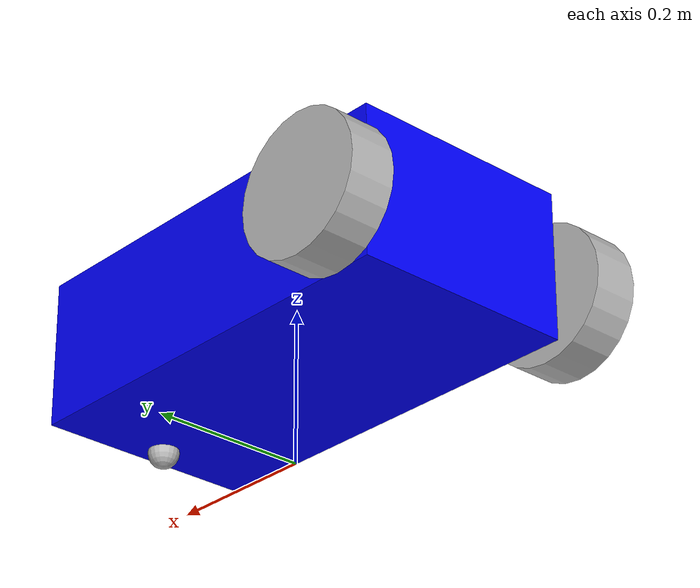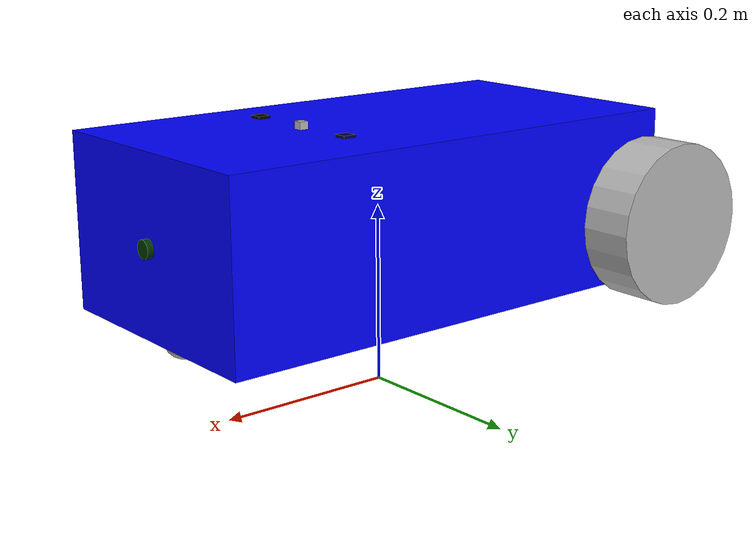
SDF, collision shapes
<?xml version="1.0" ?>
<sdf version="1.10">
    <model name='robot' canonical_link='base_link'>
      <link name='base_link'>
        <pose relative_to='__model__'>0 0 0 0 0 0</pose>
	<inertial> <!--inertial properties of the link mass, inertia matix-->
        <mass>0.00001</mass>
        <inertia>
            <ixx>0.0009</ixx>
            <ixy>0</ixy>
            <ixz>0</ixz>
            <iyy>0.0009</iyy>
            <iyz>0</iyz>
            <izz>0.0009</izz>
        </inertia>
	</inertial>

    </link>
    <link name='base_footprint'>
        <pose relative_to="base_link">0 0 0 0 0 0</pose>
    </link>
    <joint name='base_footprint_joint' type='fixed'>
        <parent>base_link</parent>
        <child>base_footprint</child>
    </joint>

    <link name='chassis'>
        <pose relative_to='base_link'>0 0 0.2 0 0 0</pose>
     <inertial> <!--inertial properties of the link mass, inertia matix-->
        <mass>2.28</mass>
        <inertia>
            <ixx>0.03667</ixx>
            <iyy>0.02383</iyy>
            <izz>0.045833</izz>
        </inertia>
    </inertial>
    <visual name='visual_chassis'>
        <geometry>
          <box>
            <size>0.568 0.296 0.193</size>
          </box>
        </geometry>
        <material>
            <ambient>0.0 0.0 1.0 1</ambient>
            <diffuse>0.0 0.0 1.0 1</diffuse>
            <specular>0.0 0.0 1.0 1</specular>
        </material>
      </visual>
      <collision name='collision_chassis'>
        <geometry>
          <box>
            <size>0.568 0.296 0.193</size>
          </box>
        </geometry>
      </collision>
    </link>
    <joint name='chassis_joint' type='fixed'>
	    <parent>base_link</parent>
      <child>chassis</child>
    </joint>

    <link name='left_wheel'>
    <pose relative_to="chassis">-0.25 0.19 -0.02 -1.5707 0 0</pose>
    <inertial>
        <mass>0.1</mass>
        <inertia>
            <ixx>0.000233</ixx>
            <ixy>0</ixy>
            <ixz>0</ixz>
            <iyy>0.000233</iyy>
            <iyz>0</iyz>
            <izz>0.000405</izz>
        </inertia>
      </inertial>
    <visual name='visual'>
      <pose>0 0 0 -1.5707 0 0</pose>
      <geometry>
	 <mesh>
	 <uri>package://robot/models/robot/meshes/wheel.dae</uri>
	 <scale>0.5 0.5 0.5</scale>
	 </mesh>
      </geometry>
    </visual>
    <collision name='collision'>
      <geometry>
        <cylinder>
           <radius>0.09</radius>
           <length>0.06</length>
        </cylinder>
      </geometry>
    </collision>
</link>
<!--The same as left wheel but with different position-->
<link name='right_wheel'>
    <pose relative_to="chassis">-0.25 -0.19  -0.02 -1.5707 0 0</pose> <!--angles are in radian-->
    <inertial>
        <mass>0.1</mass>
        <inertia>
            <ixx>0.000233</ixx>
            <ixy>0</ixy>
            <ixz>0</ixz>
            <iyy>0.000233</iyy>
            <iyz>0</iyz>
            <izz>0.000405</izz>
        </inertia>
    </inertial>
    <visual name='visual'>
      <pose>0 0 0 -1.5707 0 0</pose>
      <geometry>
         <mesh>

	 <uri>package://robot/models/robot/meshes/wheel.dae</uri>
            <scale>0.5 0.5 0.5</scale>
         </mesh>
      </geometry>
    </visual>
    <collision name='collision'>
      <geometry>
        <cylinder>
           <radius>0.09</radius>
           <length>0.06</length>
        </cylinder>
      </geometry>
    </collision>
</link>
<frame name="caster_frame" attached_to='chassis'>
    <pose>0.25 0 -0.1 0 0 0</pose>
</frame>
<!--caster wheel-->
<link name='caster'>
    <pose relative_to='caster_frame'/>
    <inertial>
        <mass>0.1</mass>
        <inertia>
            <ixx>0.000004</ixx>
            <ixy>0</ixy>
            <ixz>0</ixz>
            <iyy>0.000004</iyy>
            <iyz>0</iyz>
            <izz>0.000004</izz>
        </inertia>
      </inertial>
      <collision name='collision'>
      <visual>
        <sphere>
           <radius>0.02</radius>
        </sphere>
      </visual>
      <geometry>
        <sphere>
           <radius>0.02</radius>
        </sphere>
      </geometry>
    </collision>
  </link>
    <joint name='left_wheel_joint' type='revolute'>
      <parent>chassis</parent>
      <child>left_wheel</child>
      <axis>
        <xyz expressed_in='__model__'>0 1 0</xyz>
        <limit>
          <lower>-1.79769e+308</lower>    <!--negative infinity-->
          <upper>1.79769e+308</upper>     <!--positive infinity-->
        </limit>
      </axis>
    </joint>
    <joint name='right_wheel_joint' type='revolute'>
      <parent>chassis</parent>
      <child>right_wheel</child>
      <axis>
        <xyz expressed_in='__model__'>0 1 0</xyz>
        <limit>
          <lower>-1.79769e+308</lower>    <!--negative infinity-->
          <upper>1.79769e+308</upper>     <!--positive infinity-->
        </limit>
    </axis>
</joint>
<joint name='caster_wheel' type='ball'>
    <parent>chassis</parent>
    <child>caster</child>
</joint>
<plugin
    filename="gz-sim-diff-drive-system"
    name="gz::sim::systems::DiffDrive">
    <left_joint>left_wheel_joint</left_joint>
    <right_joint>right_wheel_joint</right_joint>
    <wheel_separation>0.3</wheel_separation>
    <wheel_radius>0.09</wheel_radius>
    <topic>cmd_vel</topic>
    <odom_publish_frequency>30</odom_publish_frequency>
    <odom_topic>odom</odom_topic>
    <tf_topic>tf</tf_topic>
    <frame_id>odom</frame_id>
    <child_frame_id>base_link</child_frame_id>
</plugin>

 <link name='camera_body'>
     <pose relative_to="chassis">0.286 0 0 0 0 0</pose>
     <inertial> <!--inertial properties of the link mass, inertia matix-->
        <mass>0.005</mass>
        <inertia>
            <ixx>0.0000001</ixx>
            <ixy>0</ixy>
            <ixz>0</ixz>
            <iyy>0.0000001</iyy>
            <iyz>0</iyz>
            <izz>0.0000001</izz>
        </inertia>
     </inertial>

            <visual name='visual'>
                <pose>0 0 0 0 0 0</pose>
                <geometry>
                    <cylinder>
                        <radius>0.01</radius>
                        <length>0.01</length>
                    </cylinder>
                </geometry>
                <material>
                    <ambient>0 0.1 0 0.1</ambient>
                    <diffuse>0 0.2 0 1</diffuse>
                    <specular>0 0 0.5 1</specular>
                    <emissive>0 0 0.3 1</emissive>
                </material>
            </visual>
            <collision name='collision'>
                <pose>0 0 0 0 1.5707 0</pose>
                <geometry>
                    <cylinder>
                        <radius>0.01</radius>
                        <length>0.01</length>
                    </cylinder>
                </geometry>
            </collision>
            <sensor name="camera" type="camera">
              <camera>
                <pose>0 0 0 0 0 0</pose>
                <horizontal_fov>1.047</horizontal_fov>
                <image>
                  <width>800</width>
                  <height>600</height>
                </image>
                <clip>
                  <near>0.1</near>
                  <far>100</far>
                </clip>
                <optical_frame_id>camera</optical_frame_id>
              </camera>
              <always_on>1</always_on>
              <update_rate>30</update_rate>
              <visualize>true</visualize>
              <topic>camera</topic>
            </sensor>
        </link>
        <link name='camera'>
        <inertial>
          <mass>0.01</mass>
          <inertia>
            <ixx>0.0000001</ixx>
            <iyy>0.0000001</iyy>
            <izz>0.0000001</izz>
          </inertia>
        </inertial>
            <pose relative_to="camera_body">0.01 0 0 1.5708 3.141 1.5708</pose>
        </link>
        <joint name='camera_joint' type='fixed'>
            <parent>chassis</parent>
            <child>camera_body</child>
        </joint>
        <joint name='camera_optical_joint' type='fixed'>
            <parent>camera_body</parent>
            <child>camera</child>
        </joint>
     <link name="lidar">
        <pose relative_to="chassis">0.1 0.0 0.1 0 0 0</pose>
        <inertial>
          <mass>0.01</mass>
          <inertia>
          <inertia>
            <ixx>0.0000001</ixx>
            <iyy>0.0000001</iyy>
            <izz>0.0000001</izz>
          </inertia>
          </inertia>
        </inertial>
        <collision name="collision">
          <geometry>
            <box>
              <size>0.01 0.01 0.01</size>
            </box>
          </geometry>
        </collision>
        <visual name="visual">
          <geometry>
            <box>
              <size>0.01 0.01 0.01</size>
            </box>
          </geometry>
        </visual>

        <sensor name='gpu_lidar' type='gpu_lidar'>
          <pose relative_to='lidar'>0 0 0.05 0 0 0</pose>
          <topic>scan</topic>
          <gz_frame_id>lidar</gz_frame_id>
          <update_rate>10</update_rate>
          <lidar>
            <scan>
              <horizontal>
                <samples>1081</samples>
                <resolution>1</resolution>
                <min_angle>-2.356</min_angle>
                <max_angle>2.356</max_angle>
              </horizontal>
            </scan>
            <range>
              <min>0.08</min>
              <max>10.0</max>
              <resolution>0.01</resolution>
            </range>
          </lidar>
          <alwaysOn>1</alwaysOn>
          <visualize>true</visualize>
        </sensor>
      </link>
      <joint name='lidar_joint' type='fixed'>
	 <parent>chassis</parent>
         <child>lidar</child>
      </joint>
      <link name='imu'>
            <pose relative_to="chassis">0.1 0.075 0.1 0 0 0</pose>
     <inertial> <!--inertial properties of the link mass, inertia matix-->
        <mass>0.005</mass>
        <inertia>
          <inertia>
            <ixx>0.0000001</ixx>
            <iyy>0.0000001</iyy>
            <izz>0.0000001</izz>
          </inertia>
        </inertia>
</inertial>

            <visual name='visual'>
                <geometry>
                    <box>
                        <size>0.015 0.015 0.003</size>
                    </box>
                </geometry>
                <material>
                    <ambient>0 0 0.1 0.1</ambient>
                    <diffuse>0 0 0.2 1</diffuse>
                    <specular>0 0 0.5 1</specular>
                    <emissive>0 0 0.3 1</emissive>
                </material>
            </visual>
            <collision name='collision'>
                <geometry>
                    <box>
                        <size>0.015 0.015 0.003</size>
                    </box>
                </geometry>
            </collision>
            <sensor name="imu_sensor" type="imu">
                <always_on>1</always_on>
                <update_rate>30</update_rate>
                <visualize>true</visualize>
                <topic>imu</topic>
                <gz_frame_id>imu</gz_frame_id>
            </sensor>
        </link>
        <joint name='imu_joint' type='fixed'>
            <parent>chassis</parent>
            <child>imu</child>
        </joint>

     <link name='gps'>
        <pose relative_to="chassis">0.1 -0.075 0.1 0 0 0</pose>
        <inertial> <!--inertial properties of the link mass, inertia matix-->
          <mass>0.005</mass>
           <inertia>
          <inertia>
            <ixx>0.0000001</ixx>
            <iyy>0.0000001</iyy>
            <izz>0.0000001</izz>
          </inertia>
          </inertia>
        </inertial>
            <visual name='visual'>
                <geometry>
                    <box>
                        <size>0.015 0.015 0.003</size>
                    </box>
                </geometry>
                <material>
                    <ambient>0 0 0 0.1</ambient>
                    <diffuse>0 0 0 1</diffuse>
                    <specular>0 0 0 1</specular>
                    <emissive>0 0 0 1</emissive>
                </material>
            </visual>
            <collision name='collision'>
                <geometry>
                    <box>
                        <size>0.015 0.015 0.003</size>
                    </box>
                </geometry>
            </collision>
            <sensor name="navsat_sensor" type="navsat">
              <always_on>1</always_on>
              <update_rate>30</update_rate>
              <topic>navsat</topic>
              <gz_frame_id>gps</gz_frame_id>
            </sensor>
        </link>
        <joint name='gps_joint' type='fixed'>
            <parent>chassis</parent>
            <child>gps</child>
        </joint>
      <plugin
        filename="gz-sim-joint-state-publisher-system"
        name="gz::sim::systems::JointStatePublisher">
      </plugin>

      <plugin
        filename="gz-sim-pose-publisher-system"
        name="gz::sim::systems::PosePublisher">
        <publish_link_pose>true</publish_link_pose>
        <use_pose_vector_msg>true</use_pose_vector_msg>
        <static_publisher>true</static_publisher>
        <static_update_frequency>1</static_update_frequency>
      </plugin>

</model>
</sdf>
